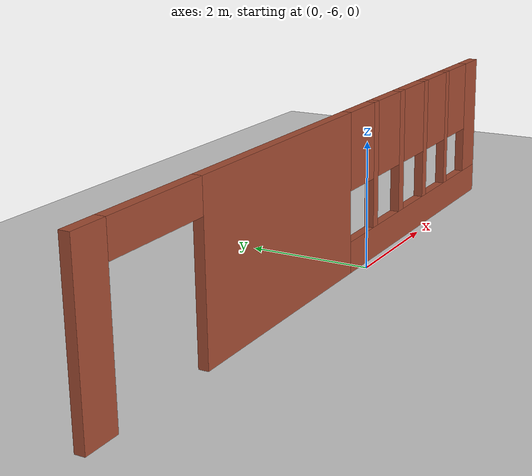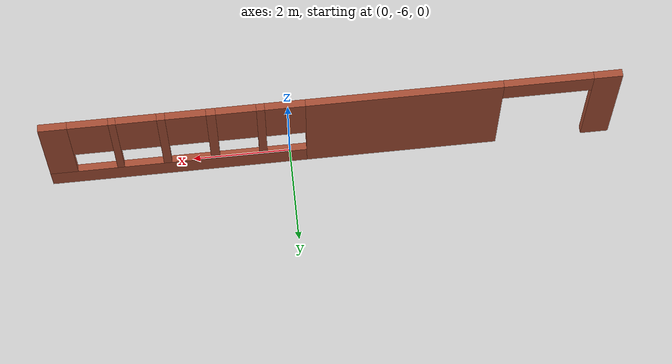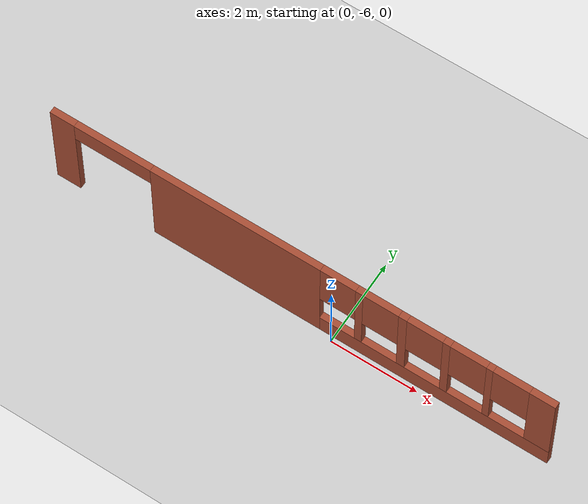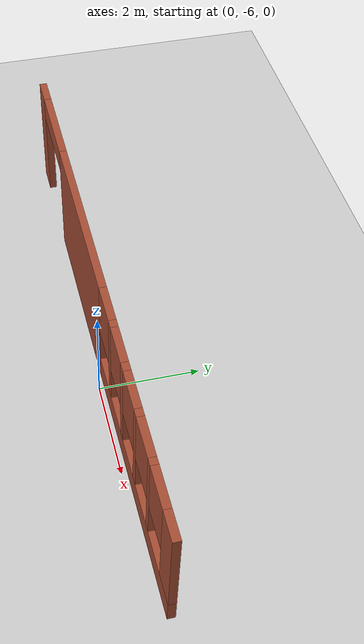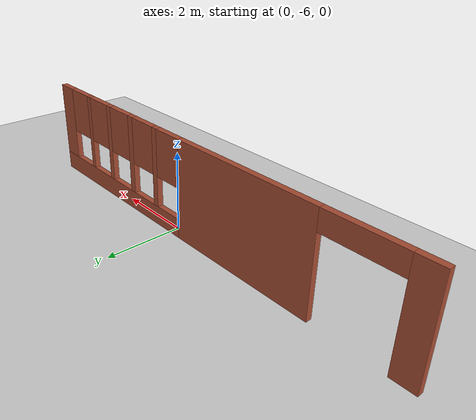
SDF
<sdf version="1.6">
 <world name="default">
  <model name="ground_plane">
   <static>1</static>
   <link name="link">
    <collision name="collision">
     <geometry><plane><normal>0 0 1</normal><size>100 100</size></plane></geometry>
     <surface><friction><ode><mu>100</mu><mu2>50</mu2></ode></friction></surface>
    </collision>
    <visual name="visual">
     <cast_shadows>0</cast_shadows>
     <geometry><plane><normal>0 0 1</normal><size>100 100</size></plane></geometry>
     <material>
      <script><uri>file://media/materials/scripts/gazebo.material</uri><name>Gazebo/Grey</name></script>
     </material>
    </visual>
   </link>
  </model>
  <model name="project1_building">
   <link name="Wall_9">
    <pose>0.002674 -5.425 0 0 -0 0</pose>
    <visual name="Wall_9_Visual_0">
     <pose>-5.46483 0 1.25 0 -0 0</pose>
     <geometry><box><size>0.570338 0.15 2.5</size></box></geometry>
     <material>
      <script><uri>file://media/materials/scripts/gazebo.material</uri><name>Gazebo/Bricks</name></script>
      <ambient>1 1 1 1</ambient>
      <shader type="pixel"/>
      <diffuse>1 1 1 1</diffuse>
      <specular>0.2 0.2 0.2 1</specular>
      <emissive>0 0 0 1</emissive>
     </material>
     <meta><layer>0</layer></meta>
    </visual>
    <visual name="Wall_9_Visual_1">
     <pose>-1.43621 0 1.25 0 -0 0</pose>
     <geometry><box><size>3.91692 0.15 2.5</size></box></geometry>
     <material>
      <script><uri>file://media/materials/scripts/gazebo.material</uri><name>Gazebo/Bricks</name></script>
      <ambient>1 1 1 1</ambient>
      <shader type="pixel"/>
      <diffuse>1 1 1 1</diffuse>
      <specular>0.2 0.2 0.2 1</specular>
      <emissive>0 0 0 1</emissive>
     </material>
     <meta><layer>0</layer></meta>
    </visual>
    <visual name="Wall_9_Visual_2">
     <pose>3.13613 0 0.25 0 -0 0</pose>
     <geometry><box><size>5.22775 0.15 0.5</size></box></geometry>
     <material>
      <script><uri>file://media/materials/scripts/gazebo.material</uri><name>Gazebo/Bricks</name></script>
      <ambient>1 1 1 1</ambient>
      <shader type="pixel"/>
      <diffuse>1 1 1 1</diffuse>
      <specular>0.2 0.2 0.2 1</specular>
      <emissive>0 0 0 1</emissive>
     </material>
     <meta><layer>0</layer></meta>
    </visual>
    <visual name="Wall_9_Visual_3">
     <pose>1.40498 0 1.5 0 -0 0</pose>
     <geometry><box><size>0.165451 0.15 2</size></box></geometry>
     <material>
      <script><uri>file://media/materials/scripts/gazebo.material</uri><name>Gazebo/Bricks</name></script>
      <ambient>1 1 1 1</ambient>
      <shader type="pixel"/>
      <diffuse>1 1 1 1</diffuse>
      <specular>0.2 0.2 0.2 1</specular>
      <emissive>0 0 0 1</emissive>
     </material>
     <meta><layer>0</layer></meta>
    </visual>
    <visual name="Wall_9_Visual_5">
     <pose>3.35599 0 1.5 0 -0 0</pose>
     <geometry><box><size>0.165451 0.15 2</size></box></geometry>
     <material>
      <script><uri>file://media/materials/scripts/gazebo.material</uri><name>Gazebo/Bricks</name></script>
      <ambient>1 1 1 1</ambient>
      <shader type="pixel"/>
      <diffuse>1 1 1 1</diffuse>
      <specular>0.2 0.2 0.2 1</specular>
      <emissive>0 0 0 1</emissive>
     </material>
     <meta><layer>0</layer></meta>
    </visual>
    <visual name="Wall_9_Visual_4">
     <pose>2.38049 0 1.5 0 -0 0</pose>
     <geometry><box><size>0.185565 0.15 2</size></box></geometry>
     <material>
      <script><uri>file://media/materials/scripts/gazebo.material</uri><name>Gazebo/Bricks</name></script>
      <ambient>1 1 1 1</ambient>
      <shader type="pixel"/>
      <diffuse>1 1 1 1</diffuse>
      <specular>0.2 0.2 0.2 1</specular>
      <emissive>0 0 0 1</emissive>
     </material>
     <meta><layer>0</layer></meta>
    </visual>
    <visual name="Wall_9_Visual_6">
     <pose>4.31139 0 1.5 0 -0 0</pose>
     <geometry><box><size>0.145338 0.15 2</size></box></geometry>
     <material>
      <script><uri>file://media/materials/scripts/gazebo.material</uri><name>Gazebo/Bricks</name></script>
      <ambient>1 1 1 1</ambient>
      <shader type="pixel"/>
      <diffuse>1 1 1 1</diffuse>
      <specular>0.2 0.2 0.2 1</specular>
      <emissive>0 0 0 1</emissive>
     </material>
     <meta><layer>0</layer></meta>
    </visual>
    <visual name="Wall_9_Visual_7">
     <pose>5.46703 0 1.5 0 -0 0</pose>
     <geometry><box><size>0.565943 0.15 2</size></box></geometry>
     <material>
      <script><uri>file://media/materials/scripts/gazebo.material</uri><name>Gazebo/Bricks</name></script>
      <ambient>1 1 1 1</ambient>
      <shader type="pixel"/>
      <diffuse>1 1 1 1</diffuse>
      <specular>0.2 0.2 0.2 1</specular>
      <emissive>0 0 0 1</emissive>
     </material>
     <meta><layer>0</layer></meta>
    </visual>
    <visual name="Wall_9_Visual_8">
     <pose>0.922252 0 1.9 0 -0 0</pose>
     <geometry><box><size>0.8 0.15 1.2</size></box></geometry>
     <material>
      <script><uri>file://media/materials/scripts/gazebo.material</uri><name>Gazebo/Bricks</name></script>
      <ambient>1 1 1 1</ambient>
      <shader type="pixel"/>
      <diffuse>1 1 1 1</diffuse>
      <specular>0.2 0.2 0.2 1</specular>
      <emissive>0 0 0 1</emissive>
     </material>
     <meta><layer>0</layer></meta>
    </visual>
    <visual name="Wall_9_Visual_9">
     <pose>1.8877 0 1.9 0 -0 0</pose>
     <geometry><box><size>0.8 0.15 1.2</size></box></geometry>
     <material>
      <script><uri>file://media/materials/scripts/gazebo.material</uri><name>Gazebo/Bricks</name></script>
      <ambient>1 1 1 1</ambient>
      <shader type="pixel"/>
      <diffuse>1 1 1 1</diffuse>
      <specular>0.2 0.2 0.2 1</specular>
      <emissive>0 0 0 1</emissive>
     </material>
     <meta><layer>0</layer></meta>
    </visual>
    <visual name="Wall_9_Visual_10">
     <pose>2.87327 0 1.9 0 -0 0</pose>
     <geometry><box><size>0.8 0.15 1.2</size></box></geometry>
     <material>
      <script><uri>file://media/materials/scripts/gazebo.material</uri><name>Gazebo/Bricks</name></script>
      <ambient>1 1 1 1</ambient>
      <shader type="pixel"/>
      <diffuse>1 1 1 1</diffuse>
      <specular>0.2 0.2 0.2 1</specular>
      <emissive>0 0 0 1</emissive>
     </material>
     <meta><layer>0</layer></meta>
    </visual>
    <visual name="Wall_9_Visual_11">
     <pose>3.83872 0 1.9 0 -0 0</pose>
     <geometry><box><size>0.8 0.15 1.2</size></box></geometry>
     <material>
      <script><uri>file://media/materials/scripts/gazebo.material</uri><name>Gazebo/Bricks</name></script>
      <ambient>1 1 1 1</ambient>
      <shader type="pixel"/>
      <diffuse>1 1 1 1</diffuse>
      <specular>0.2 0.2 0.2 1</specular>
      <emissive>0 0 0 1</emissive>
     </material>
     <meta><layer>0</layer></meta>
    </visual>
    <visual name="Wall_9_Visual_12">
     <pose>4.78406 0 1.9 0 -0 0</pose>
     <geometry><box><size>0.8 0.15 1.2</size></box></geometry>
     <material>
      <script><uri>file://media/materials/scripts/gazebo.material</uri><name>Gazebo/Bricks</name></script>
      <ambient>1 1 1 1</ambient>
      <shader type="pixel"/>
      <diffuse>1 1 1 1</diffuse>
      <specular>0.2 0.2 0.2 1</specular>
      <emissive>0 0 0 1</emissive>
     </material>
     <meta><layer>0</layer></meta>
    </visual>
    <visual name="Wall_9_Visual_13">
     <pose>-4.28716 0 2.25 0 -0 0</pose>
     <geometry><box><size>1.785 0.15 0.5</size></box></geometry>
     <material>
      <script><uri>file://media/materials/scripts/gazebo.material</uri><name>Gazebo/Bricks</name></script>
      <ambient>1 1 1 1</ambient>
      <shader type="pixel"/>
      <diffuse>1 1 1 1</diffuse>
      <specular>0.2 0.2 0.2 1</specular>
      <emissive>0 0 0 1</emissive>
     </material>
     <meta><layer>0</layer></meta>
    </visual>
    <collision name="Wall_9_Collision_0">
     <pose>-5.46483 0 1.25 0 -0 0</pose>
     <geometry><box><size>0.570338 0.15 2.5</size></box></geometry>
     <surface>
      <friction>
       <ode><mu>1</mu><mu2>1</mu2><fdir1>0 0 0</fdir1><slip1>0</slip1><slip2>0</slip2></ode>
       <torsional>
        <coefficient>1</coefficient>
        <patch_radius>0</patch_radius>
        <surface_radius>0</surface_radius>
        <use_patch_radius>1</use_patch_radius>
        <ode><slip>0</slip></ode>
       </torsional>
      </friction>
      <bounce><restitution_coefficient>0</restitution_coefficient><threshold>1e+06</threshold></bounce>
      <contact>
       <collide_without_contact>0</collide_without_contact>
       <collide_without_contact_bitmask>1</collide_without_contact_bitmask>
       <collide_bitmask>1</collide_bitmask>
       <ode>
        <soft_cfm>0</soft_cfm>
        <soft_erp>0.2</soft_erp>
        <kp>1e+13</kp>
        <kd>1</kd>
        <max_vel>0.01</max_vel>
        <min_depth>0</min_depth>
       </ode>
       <bullet>
        <split_impulse>1</split_impulse>
        <split_impulse_penetration_threshold>-0.01</split_impulse_penetration_threshold>
        <soft_cfm>0</soft_cfm>
        <soft_erp>0.2</soft_erp>
        <kp>1e+13</kp>
        <kd>1</kd>
       </bullet>
      </contact>
     </surface>
    </collision>
    <collision name="Wall_9_Collision_1">
     <pose>-1.43621 0 1.25 0 -0 0</pose>
     <geometry><box><size>3.91692 0.15 2.5</size></box></geometry>
     <surface>
      <friction>
       <ode><mu>1</mu><mu2>1</mu2><fdir1>0 0 0</fdir1><slip1>0</slip1><slip2>0</slip2></ode>
       <torsional>
        <coefficient>1</coefficient>
        <patch_radius>0</patch_radius>
        <surface_radius>0</surface_radius>
        <use_patch_radius>1</use_patch_radius>
        <ode><slip>0</slip></ode>
       </torsional>
      </friction>
      <bounce><restitution_coefficient>0</restitution_coefficient><threshold>1e+06</threshold></bounce>
      <contact>
       <collide_without_contact>0</collide_without_contact>
       <collide_without_contact_bitmask>1</collide_without_contact_bitmask>
       <collide_bitmask>1</collide_bitmask>
       <ode>
        <soft_cfm>0</soft_cfm>
        <soft_erp>0.2</soft_erp>
        <kp>1e+13</kp>
        <kd>1</kd>
        <max_vel>0.01</max_vel>
        <min_depth>0</min_depth>
       </ode>
       <bullet>
        <split_impulse>1</split_impulse>
        <split_impulse_penetration_threshold>-0.01</split_impulse_penetration_threshold>
        <soft_cfm>0</soft_cfm>
        <soft_erp>0.2</soft_erp>
        <kp>1e+13</kp>
        <kd>1</kd>
       </bullet>
      </contact>
     </surface>
    </collision>
    <collision name="Wall_9_Collision_3">
     <pose>1.40498 0 1.5 0 -0 0</pose>
     <geometry><box><size>0.165451 0.15 2</size></box></geometry>
     <surface>
      <friction>
       <ode><mu>1</mu><mu2>1</mu2><fdir1>0 0 0</fdir1><slip1>0</slip1><slip2>0</slip2></ode>
       <torsional>
        <coefficient>1</coefficient>
        <patch_radius>0</patch_radius>
        <surface_radius>0</surface_radius>
        <use_patch_radius>1</use_patch_radius>
        <ode><slip>0</slip></ode>
       </torsional>
      </friction>
      <bounce><restitution_coefficient>0</restitution_coefficient><threshold>1e+06</threshold></bounce>
      <contact>
       <collide_without_contact>0</collide_without_contact>
       <collide_without_contact_bitmask>1</collide_without_contact_bitmask>
       <collide_bitmask>1</collide_bitmask>
       <ode>
        <soft_cfm>0</soft_cfm>
        <soft_erp>0.2</soft_erp>
        <kp>1e+13</kp>
        <kd>1</kd>
        <max_vel>0.01</max_vel>
        <min_depth>0</min_depth>
       </ode>
       <bullet>
        <split_impulse>1</split_impulse>
        <split_impulse_penetration_threshold>-0.01</split_impulse_penetration_threshold>
        <soft_cfm>0</soft_cfm>
        <soft_erp>0.2</soft_erp>
        <kp>1e+13</kp>
        <kd>1</kd>
       </bullet>
      </contact>
     </surface>
    </collision>
    <collision name="Wall_9_Collision_2">
     <pose>3.13613 0 0.25 0 -0 0</pose>
     <geometry><box><size>5.22775 0.15 0.5</size></box></geometry>
     <surface>
      <friction>
       <ode><mu>1</mu><mu2>1</mu2><fdir1>0 0 0</fdir1><slip1>0</slip1><slip2>0</slip2></ode>
       <torsional>
        <coefficient>1</coefficient>
        <patch_radius>0</patch_radius>
        <surface_radius>0</surface_radius>
        <use_patch_radius>1</use_patch_radius>
        <ode><slip>0</slip></ode>
       </torsional>
      </friction>
      <bounce><restitution_coefficient>0</restitution_coefficient><threshold>1e+06</threshold></bounce>
      <contact>
       <collide_without_contact>0</collide_without_contact>
       <collide_without_contact_bitmask>1</collide_without_contact_bitmask>
       <collide_bitmask>1</collide_bitmask>
       <ode>
        <soft_cfm>0</soft_cfm>
        <soft_erp>0.2</soft_erp>
        <kp>1e+13</kp>
        <kd>1</kd>
        <max_vel>0.01</max_vel>
        <min_depth>0</min_depth>
       </ode>
       <bullet>
        <split_impulse>1</split_impulse>
        <split_impulse_penetration_threshold>-0.01</split_impulse_penetration_threshold>
        <soft_cfm>0</soft_cfm>
        <soft_erp>0.2</soft_erp>
        <kp>1e+13</kp>
        <kd>1</kd>
       </bullet>
      </contact>
     </surface>
    </collision>
    <collision name="Wall_9_Collision_4">
     <pose>2.38049 0 1.5 0 -0 0</pose>
     <geometry><box><size>0.185565 0.15 2</size></box></geometry>
     <surface>
      <friction>
       <ode><mu>1</mu><mu2>1</mu2><fdir1>0 0 0</fdir1><slip1>0</slip1><slip2>0</slip2></ode>
       <torsional>
        <coefficient>1</coefficient>
        <patch_radius>0</patch_radius>
        <surface_radius>0</surface_radius>
        <use_patch_radius>1</use_patch_radius>
        <ode><slip>0</slip></ode>
       </torsional>
      </friction>
      <bounce><restitution_coefficient>0</restitution_coefficient><threshold>1e+06</threshold></bounce>
      <contact>
       <collide_without_contact>0</collide_without_contact>
       <collide_without_contact_bitmask>1</collide_without_contact_bitmask>
       <collide_bitmask>1</collide_bitmask>
       <ode>
        <soft_cfm>0</soft_cfm>
        <soft_erp>0.2</soft_erp>
        <kp>1e+13</kp>
        <kd>1</kd>
        <max_vel>0.01</max_vel>
        <min_depth>0</min_depth>
       </ode>
       <bullet>
        <split_impulse>1</split_impulse>
        <split_impulse_penetration_threshold>-0.01</split_impulse_penetration_threshold>
        <soft_cfm>0</soft_cfm>
        <soft_erp>0.2</soft_erp>
        <kp>1e+13</kp>
        <kd>1</kd>
       </bullet>
      </contact>
     </surface>
    </collision>
    <collision name="Wall_9_Collision_6">
     <pose>4.31139 0 1.5 0 -0 0</pose>
     <geometry><box><size>0.145338 0.15 2</size></box></geometry>
     <surface>
      <friction>
       <ode><mu>1</mu><mu2>1</mu2><fdir1>0 0 0</fdir1><slip1>0</slip1><slip2>0</slip2></ode>
       <torsional>
        <coefficient>1</coefficient>
        <patch_radius>0</patch_radius>
        <surface_radius>0</surface_radius>
        <use_patch_radius>1</use_patch_radius>
        <ode><slip>0</slip></ode>
       </torsional>
      </friction>
      <bounce><restitution_coefficient>0</restitution_coefficient><threshold>1e+06</threshold></bounce>
      <contact>
       <collide_without_contact>0</collide_without_contact>
       <collide_without_contact_bitmask>1</collide_without_contact_bitmask>
       <collide_bitmask>1</collide_bitmask>
       <ode>
        <soft_cfm>0</soft_cfm>
        <soft_erp>0.2</soft_erp>
        <kp>1e+13</kp>
        <kd>1</kd>
        <max_vel>0.01</max_vel>
        <min_depth>0</min_depth>
       </ode>
       <bullet>
        <split_impulse>1</split_impulse>
        <split_impulse_penetration_threshold>-0.01</split_impulse_penetration_threshold>
        <soft_cfm>0</soft_cfm>
        <soft_erp>0.2</soft_erp>
        <kp>1e+13</kp>
        <kd>1</kd>
       </bullet>
      </contact>
     </surface>
    </collision>
    <collision name="Wall_9_Collision_5">
     <pose>3.35599 0 1.5 0 -0 0</pose>
     <geometry><box><size>0.165451 0.15 2</size></box></geometry>
     <surface>
      <friction>
       <ode><mu>1</mu><mu2>1</mu2><fdir1>0 0 0</fdir1><slip1>0</slip1><slip2>0</slip2></ode>
       <torsional>
        <coefficient>1</coefficient>
        <patch_radius>0</patch_radius>
        <surface_radius>0</surface_radius>
        <use_patch_radius>1</use_patch_radius>
        <ode><slip>0</slip></ode>
       </torsional>
      </friction>
      <bounce><restitution_coefficient>0</restitution_coefficient><threshold>1e+06</threshold></bounce>
      <contact>
       <collide_without_contact>0</collide_without_contact>
       <collide_without_contact_bitmask>1</collide_without_contact_bitmask>
       <collide_bitmask>1</collide_bitmask>
       <ode>
        <soft_cfm>0</soft_cfm>
        <soft_erp>0.2</soft_erp>
        <kp>1e+13</kp>
        <kd>1</kd>
        <max_vel>0.01</max_vel>
        <min_depth>0</min_depth>
       </ode>
       <bullet>
        <split_impulse>1</split_impulse>
        <split_impulse_penetration_threshold>-0.01</split_impulse_penetration_threshold>
        <soft_cfm>0</soft_cfm>
        <soft_erp>0.2</soft_erp>
        <kp>1e+13</kp>
        <kd>1</kd>
       </bullet>
      </contact>
     </surface>
    </collision>
    <collision name="Wall_9_Collision_8">
     <pose>0.922252 0 1.9 0 -0 0</pose>
     <geometry><box><size>0.8 0.15 1.2</size></box></geometry>
     <surface>
      <friction>
       <ode><mu>1</mu><mu2>1</mu2><fdir1>0 0 0</fdir1><slip1>0</slip1><slip2>0</slip2></ode>
       <torsional>
        <coefficient>1</coefficient>
        <patch_radius>0</patch_radius>
        <surface_radius>0</surface_radius>
        <use_patch_radius>1</use_patch_radius>
        <ode><slip>0</slip></ode>
       </torsional>
      </friction>
      <bounce><restitution_coefficient>0</restitution_coefficient><threshold>1e+06</threshold></bounce>
      <contact>
       <collide_without_contact>0</collide_without_contact>
       <collide_without_contact_bitmask>1</collide_without_contact_bitmask>
       <collide_bitmask>1</collide_bitmask>
       <ode>
        <soft_cfm>0</soft_cfm>
        <soft_erp>0.2</soft_erp>
        <kp>1e+13</kp>
        <kd>1</kd>
        <max_vel>0.01</max_vel>
        <min_depth>0</min_depth>
       </ode>
       <bullet>
        <split_impulse>1</split_impulse>
        <split_impulse_penetration_threshold>-0.01</split_impulse_penetration_threshold>
        <soft_cfm>0</soft_cfm>
        <soft_erp>0.2</soft_erp>
        <kp>1e+13</kp>
        <kd>1</kd>
       </bullet>
      </contact>
     </surface>
    </collision>
    <collision name="Wall_9_Collision_7">
     <pose>5.46703 0 1.5 0 -0 0</pose>
     <geometry><box><size>0.565943 0.15 2</size></box></geometry>
     <surface>
      <friction>
       <ode><mu>1</mu><mu2>1</mu2><fdir1>0 0 0</fdir1><slip1>0</slip1><slip2>0</slip2></ode>
       <torsional>
        <coefficient>1</coefficient>
        <patch_radius>0</patch_radius>
        <surface_radius>0</surface_radius>
        <use_patch_radius>1</use_patch_radius>
        <ode><slip>0</slip></ode>
       </torsional>
      </friction>
      <bounce><restitution_coefficient>0</restitution_coefficient><threshold>1e+06</threshold></bounce>
      <contact>
       <collide_without_contact>0</collide_without_contact>
       <collide_without_contact_bitmask>1</collide_without_contact_bitmask>
       <collide_bitmask>1</collide_bitmask>
       <ode>
        <soft_cfm>0</soft_cfm>
        <soft_erp>0.2</soft_erp>
        <kp>1e+13</kp>
        <kd>1</kd>
        <max_vel>0.01</max_vel>
        <min_depth>0</min_depth>
       </ode>
       <bullet>
        <split_impulse>1</split_impulse>
        <split_impulse_penetration_threshold>-0.01</split_impulse_penetration_threshold>
        <soft_cfm>0</soft_cfm>
        <soft_erp>0.2</soft_erp>
        <kp>1e+13</kp>
        <kd>1</kd>
       </bullet>
      </contact>
     </surface>
    </collision>
    <collision name="Wall_9_Collision_9">
     <pose>1.8877 0 1.9 0 -0 0</pose>
     <geometry><box><size>0.8 0.15 1.2</size></box></geometry>
     <surface>
      <friction>
       <ode><mu>1</mu><mu2>1</mu2><fdir1>0 0 0</fdir1><slip1>0</slip1><slip2>0</slip2></ode>
       <torsional>
        <coefficient>1</coefficient>
        <patch_radius>0</patch_radius>
        <surface_radius>0</surface_radius>
        <use_patch_radius>1</use_patch_radius>
        <ode><slip>0</slip></ode>
       </torsional>
      </friction>
      <bounce><restitution_coefficient>0</restitution_coefficient><threshold>1e+06</threshold></bounce>
      <contact>
       <collide_without_contact>0</collide_without_contact>
       <collide_without_contact_bitmask>1</collide_without_contact_bitmask>
       <collide_bitmask>1</collide_bitmask>
       <ode>
        <soft_cfm>0</soft_cfm>
        <soft_erp>0.2</soft_erp>
        <kp>1e+13</kp>
        <kd>1</kd>
        <max_vel>0.01</max_vel>
        <min_depth>0</min_depth>
       </ode>
       <bullet>
        <split_impulse>1</split_impulse>
        <split_impulse_penetration_threshold>-0.01</split_impulse_penetration_threshold>
        <soft_cfm>0</soft_cfm>
        <soft_erp>0.2</soft_erp>
        <kp>1e+13</kp>
        <kd>1</kd>
       </bullet>
      </contact>
     </surface>
    </collision>
    <collision name="Wall_9_Collision_10">
     <pose>2.87327 0 1.9 0 -0 0</pose>
     <geometry><box><size>0.8 0.15 1.2</size></box></geometry>
     <surface>
      <friction>
       <ode><mu>1</mu><mu2>1</mu2><fdir1>0 0 0</fdir1><slip1>0</slip1><slip2>0</slip2></ode>
       <torsional>
        <coefficient>1</coefficient>
        <patch_radius>0</patch_radius>
        <surface_radius>0</surface_radius>
        <use_patch_radius>1</use_patch_radius>
        <ode><slip>0</slip></ode>
       </torsional>
      </friction>
      <bounce><restitution_coefficient>0</restitution_coefficient><threshold>1e+06</threshold></bounce>
      <contact>
       <collide_without_contact>0</collide_without_contact>
       <collide_without_contact_bitmask>1</collide_without_contact_bitmask>
       <collide_bitmask>1</collide_bitmask>
       <ode>
        <soft_cfm>0</soft_cfm>
        <soft_erp>0.2</soft_erp>
        <kp>1e+13</kp>
        <kd>1</kd>
        <max_vel>0.01</max_vel>
        <min_depth>0</min_depth>
       </ode>
       <bullet>
        <split_impulse>1</split_impulse>
        <split_impulse_penetration_threshold>-0.01</split_impulse_penetration_threshold>
        <soft_cfm>0</soft_cfm>
        <soft_erp>0.2</soft_erp>
        <kp>1e+13</kp>
        <kd>1</kd>
       </bullet>
      </contact>
     </surface>
    </collision>
    <collision name="Wall_9_Collision_11">
     <pose>3.83872 0 1.9 0 -0 0</pose>
     <geometry><box><size>0.8 0.15 1.2</size></box></geometry>
     <surface>
      <friction>
       <ode><mu>1</mu><mu2>1</mu2><fdir1>0 0 0</fdir1><slip1>0</slip1><slip2>0</slip2></ode>
       <torsional>
        <coefficient>1</coefficient>
        <patch_radius>0</patch_radius>
        <surface_radius>0</surface_radius>
        <use_patch_radius>1</use_patch_radius>
        <ode><slip>0</slip></ode>
       </torsional>
      </friction>
      <bounce><restitution_coefficient>0</restitution_coefficient><threshold>1e+06</threshold></bounce>
      <contact>
       <collide_without_contact>0</collide_without_contact>
       <collide_without_contact_bitmask>1</collide_without_contact_bitmask>
       <collide_bitmask>1</collide_bitmask>
       <ode>
        <soft_cfm>0</soft_cfm>
        <soft_erp>0.2</soft_erp>
        <kp>1e+13</kp>
        <kd>1</kd>
        <max_vel>0.01</max_vel>
        <min_depth>0</min_depth>
       </ode>
       <bullet>
        <split_impulse>1</split_impulse>
        <split_impulse_penetration_threshold>-0.01</split_impulse_penetration_threshold>
        <soft_cfm>0</soft_cfm>
        <soft_erp>0.2</soft_erp>
        <kp>1e+13</kp>
        <kd>1</kd>
       </bullet>
      </contact>
     </surface>
    </collision>
    <collision name="Wall_9_Collision_13">
     <pose>-4.28716 0 2.25 0 -0 0</pose>
     <geometry><box><size>1.785 0.15 0.5</size></box></geometry>
     <surface>
      <friction>
       <ode><mu>1</mu><mu2>1</mu2><fdir1>0 0 0</fdir1><slip1>0</slip1><slip2>0</slip2></ode>
       <torsional>
        <coefficient>1</coefficient>
        <patch_radius>0</patch_radius>
        <surface_radius>0</surface_radius>
        <use_patch_radius>1</use_patch_radius>
        <ode><slip>0</slip></ode>
       </torsional>
      </friction>
      <bounce><restitution_coefficient>0</restitution_coefficient><threshold>1e+06</threshold></bounce>
      <contact>
       <collide_without_contact>0</collide_without_contact>
       <collide_without_contact_bitmask>1</collide_without_contact_bitmask>
       <collide_bitmask>1</collide_bitmask>
       <ode>
        <soft_cfm>0</soft_cfm>
        <soft_erp>0.2</soft_erp>
        <kp>1e+13</kp>
        <kd>1</kd>
        <max_vel>0.01</max_vel>
        <min_depth>0</min_depth>
       </ode>
       <bullet>
        <split_impulse>1</split_impulse>
        <split_impulse_penetration_threshold>-0.01</split_impulse_penetration_threshold>
        <soft_cfm>0</soft_cfm>
        <soft_erp>0.2</soft_erp>
        <kp>1e+13</kp>
        <kd>1</kd>
       </bullet>
      </contact>
     </surface>
    </collision>
    <collision name="Wall_9_Collision_12">
     <pose>4.78406 0 1.9 0 -0 0</pose>
     <geometry><box><size>0.8 0.15 1.2</size></box></geometry>
     <surface>
      <friction>
       <ode><mu>1</mu><mu2>1</mu2><fdir1>0 0 0</fdir1><slip1>0</slip1><slip2>0</slip2></ode>
       <torsional>
        <coefficient>1</coefficient>
        <patch_radius>0</patch_radius>
        <surface_radius>0</surface_radius>
        <use_patch_radius>1</use_patch_radius>
        <ode><slip>0</slip></ode>
       </torsional>
      </friction>
      <bounce><restitution_coefficient>0</restitution_coefficient><threshold>1e+06</threshold></bounce>
      <contact>
       <collide_without_contact>0</collide_without_contact>
       <collide_without_contact_bitmask>1</collide_without_contact_bitmask>
       <collide_bitmask>1</collide_bitmask>
       <ode>
        <soft_cfm>0</soft_cfm>
        <soft_erp>0.2</soft_erp>
        <kp>1e+13</kp>
        <kd>1</kd>
        <max_vel>0.01</max_vel>
        <min_depth>0</min_depth>
       </ode>
       <bullet>
        <split_impulse>1</split_impulse>
        <split_impulse_penetration_threshold>-0.01</split_impulse_penetration_threshold>
        <soft_cfm>0</soft_cfm>
        <soft_erp>0.2</soft_erp>
        <kp>1e+13</kp>
        <kd>1</kd>
       </bullet>
      </contact>
     </surface>
    </collision>
   </link>
   <static>1</static>
   <pose>-0.860177 -0.394811 0 0 -0 0</pose>
  </model>
 </world>
</sdf>
